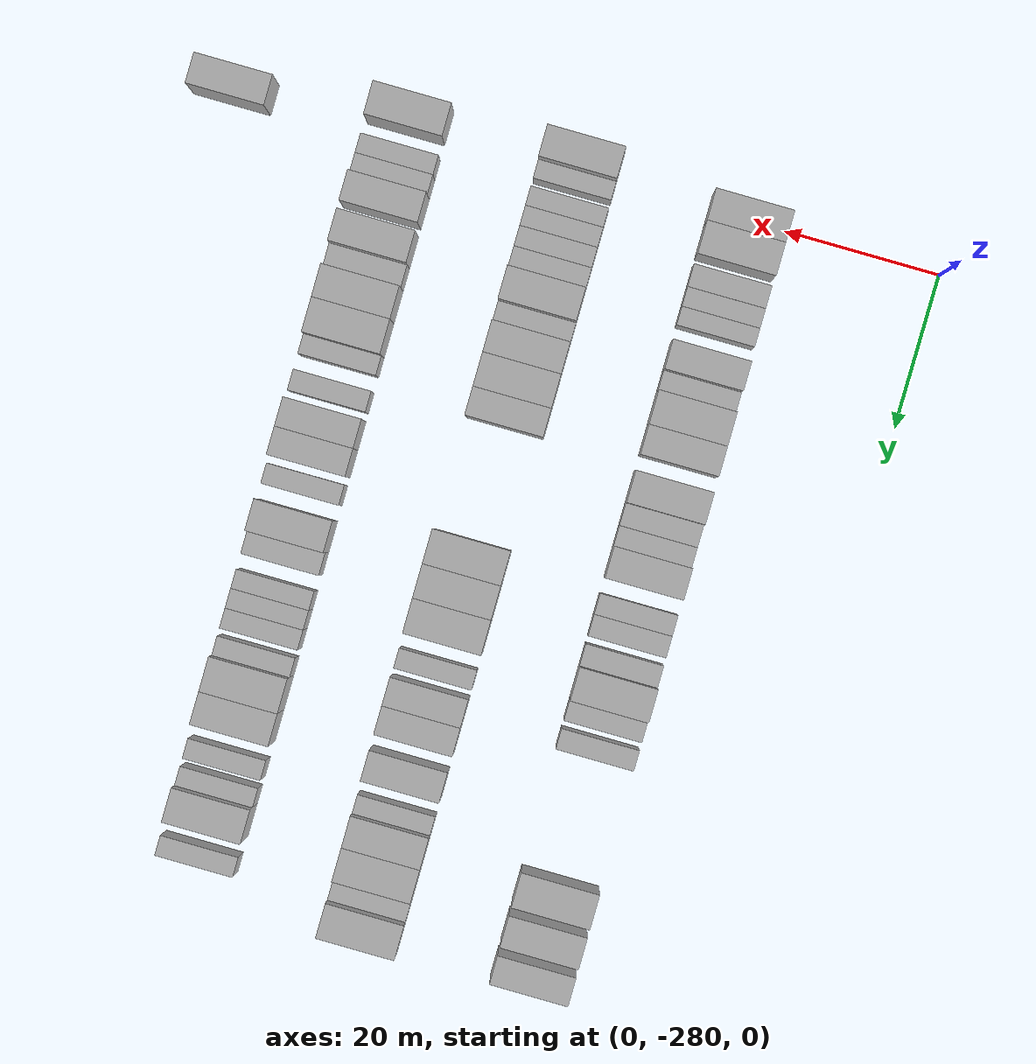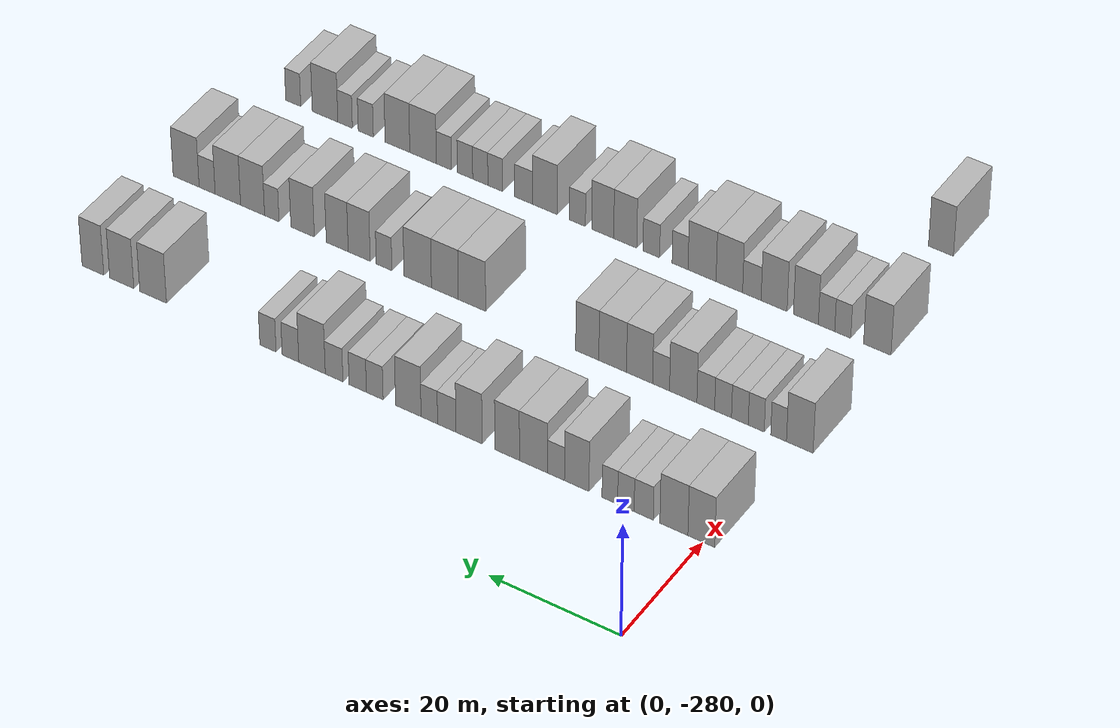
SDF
<sdf version="1.6">
 <world name="default">
  <model name="building_22">
   <static>1</static>
   <pose>25.0000 -279.7261 0 0.000000 0.000000 0.000000</pose>
   <link name="link">
    <pose>0 0 4.50 0 0 0</pose>
    <collision name="collision"><geometry><box><size>10.0000 4.0698 9.0000</size></box></geometry></collision>
    <visual name="visual">
     <cast_shadows>0</cast_shadows>
     <geometry><box><size>10.0000 4.0698 9.0000</size></box></geometry>
     <material>
      <script>
       <uri>model://HANNAS_wall/materials/scripts</uri>
       <uri>model://HANNAS_wall/materials/textures</uri>
       <name>vrc/HANNAS_wall</name>
      </script>
     </material>
    </visual>
   </link>
  </model>
  <model name="building_23">
   <static>1</static>
   <pose>25.0000 -275.5629 0 0.000000 0.000000 0.000000</pose>
   <link name="link">
    <pose>0 0 4.50 0 0 0</pose>
    <collision name="collision"><geometry><box><size>10.0000 4.2568 9.0000</size></box></geometry></collision>
    <visual name="visual">
     <cast_shadows>0</cast_shadows>
     <geometry><box><size>10.0000 4.2568 9.0000</size></box></geometry>
     <material>
      <script>
       <uri>model://HANNAS_wall/materials/scripts</uri>
       <uri>model://HANNAS_wall/materials/textures</uri>
       <name>vrc/HANNAS_wall</name>
      </script>
     </material>
    </visual>
   </link>
  </model>
  <model name="building_24">
   <static>1</static>
   <pose>25.0000 -270.9674 0 0.000000 0.000000 0.000000</pose>
   <link name="link">
    <pose>0 0 3.00 0 0 0</pose>
    <collision name="collision"><geometry><box><size>10.0000 2.9342 6.0000</size></box></geometry></collision>
    <visual name="visual">
     <cast_shadows>0</cast_shadows>
     <geometry><box><size>10.0000 2.9342 6.0000</size></box></geometry>
     <material>
      <script>
       <uri>model://HANNAS_wall/materials/scripts</uri>
       <uri>model://HANNAS_wall/materials/textures</uri>
       <name>vrc/HANNAS_wall</name>
      </script>
     </material>
    </visual>
   </link>
  </model>
  <model name="building_25">
   <static>1</static>
   <pose>25.0000 -268.2369 0 0.000000 0.000000 0.000000</pose>
   <link name="link">
    <pose>0 0 3.00 0 0 0</pose>
    <collision name="collision"><geometry><box><size>10.0000 2.5267 6.0000</size></box></geometry></collision>
    <visual name="visual">
     <cast_shadows>0</cast_shadows>
     <geometry><box><size>10.0000 2.5267 6.0000</size></box></geometry>
     <material>
      <script>
       <uri>model://HANNAS_wall/materials/scripts</uri>
       <uri>model://HANNAS_wall/materials/textures</uri>
       <name>vrc/HANNAS_wall</name>
      </script>
     </material>
    </visual>
   </link>
  </model>
  <model name="building_26">
   <static>1</static>
   <pose>25.0000 -265.7701 0 0.000000 0.000000 0.000000</pose>
   <link name="link">
    <pose>0 0 3.00 0 0 0</pose>
    <collision name="collision"><geometry><box><size>10.0000 2.4069 6.0000</size></box></geometry></collision>
    <visual name="visual">
     <cast_shadows>0</cast_shadows>
     <geometry><box><size>10.0000 2.4069 6.0000</size></box></geometry>
     <material>
      <script>
       <uri>model://HANNAS_wall/materials/scripts</uri>
       <uri>model://HANNAS_wall/materials/textures</uri>
       <name>vrc/HANNAS_wall</name>
      </script>
     </material>
    </visual>
   </link>
  </model>
  <model name="building_27">
   <static>1</static>
   <pose>25.0000 -260.6648 0 0.000000 0.000000 0.000000</pose>
   <link name="link">
    <pose>0 0 4.50 0 0 0</pose>
    <collision name="collision"><geometry><box><size>10.0000 3.8037 9.0000</size></box></geometry></collision>
    <visual name="visual">
     <cast_shadows>0</cast_shadows>
     <geometry><box><size>10.0000 3.8037 9.0000</size></box></geometry>
     <material>
      <script>
       <uri>model://HANNAS_wall/materials/scripts</uri>
       <uri>model://HANNAS_wall/materials/textures</uri>
       <name>vrc/HANNAS_wall</name>
      </script>
     </material>
    </visual>
   </link>
  </model>
  <model name="building_28">
   <static>1</static>
   <pose>25.0000 -257.4445 0 0.000000 0.000000 0.000000</pose>
   <link name="link">
    <pose>0 0 3.00 0 0 0</pose>
    <collision name="collision"><geometry><box><size>10.0000 2.6370 6.0000</size></box></geometry></collision>
    <visual name="visual">
     <cast_shadows>0</cast_shadows>
     <geometry><box><size>10.0000 2.6370 6.0000</size></box></geometry>
     <material>
      <script>
       <uri>model://HANNAS_wall/materials/scripts</uri>
       <uri>model://HANNAS_wall/materials/textures</uri>
       <name>vrc/HANNAS_wall</name>
      </script>
     </material>
    </visual>
   </link>
  </model>
  <model name="building_29">
   <static>1</static>
   <pose>25.0000 -253.9353 0 0.000000 0.000000 0.000000</pose>
   <link name="link">
    <pose>0 0 4.50 0 0 0</pose>
    <collision name="collision"><geometry><box><size>10.0000 4.3814 9.0000</size></box></geometry></collision>
    <visual name="visual">
     <cast_shadows>0</cast_shadows>
     <geometry><box><size>10.0000 4.3814 9.0000</size></box></geometry>
     <material>
      <script>
       <uri>model://HANNAS_wall/materials/scripts</uri>
       <uri>model://HANNAS_wall/materials/textures</uri>
       <name>vrc/HANNAS_wall</name>
      </script>
     </material>
    </visual>
   </link>
  </model>
  <model name="building_30">
   <static>1</static>
   <pose>25.0000 -249.8173 0 0.000000 0.000000 0.000000</pose>
   <link name="link">
    <pose>0 0 4.50 0 0 0</pose>
    <collision name="collision"><geometry><box><size>10.0000 3.8545 9.0000</size></box></geometry></collision>
    <visual name="visual">
     <cast_shadows>0</cast_shadows>
     <geometry><box><size>10.0000 3.8545 9.0000</size></box></geometry>
     <material>
      <script>
       <uri>model://HANNAS_wall/materials/scripts</uri>
       <uri>model://HANNAS_wall/materials/textures</uri>
       <name>vrc/HANNAS_wall</name>
      </script>
     </material>
    </visual>
   </link>
  </model>
  <model name="building_31">
   <static>1</static>
   <pose>25.0000 -243.8248 0 0.000000 0.000000 0.000000</pose>
   <link name="link">
    <pose>0 0 4.50 0 0 0</pose>
    <collision name="collision"><geometry><box><size>10.0000 4.1305 9.0000</size></box></geometry></collision>
    <visual name="visual">
     <cast_shadows>0</cast_shadows>
     <geometry><box><size>10.0000 4.1305 9.0000</size></box></geometry>
     <material>
      <script>
       <uri>model://HANNAS_wall/materials/scripts</uri>
       <uri>model://HANNAS_wall/materials/textures</uri>
       <name>vrc/HANNAS_wall</name>
      </script>
     </material>
    </visual>
   </link>
  </model>
  <model name="building_32">
   <static>1</static>
   <pose>25.0000 -240.3034 0 0.000000 0.000000 0.000000</pose>
   <link name="link">
    <pose>0 0 3.00 0 0 0</pose>
    <collision name="collision"><geometry><box><size>10.0000 2.9122 6.0000</size></box></geometry></collision>
    <visual name="visual">
     <cast_shadows>0</cast_shadows>
     <geometry><box><size>10.0000 2.9122 6.0000</size></box></geometry>
     <material>
      <script>
       <uri>model://HANNAS_wall/materials/scripts</uri>
       <uri>model://HANNAS_wall/materials/textures</uri>
       <name>vrc/HANNAS_wall</name>
      </script>
     </material>
    </visual>
   </link>
  </model>
  <model name="building_33">
   <static>1</static>
   <pose>25.0000 -237.5339 0 0.000000 0.000000 0.000000</pose>
   <link name="link">
    <pose>0 0 3.00 0 0 0</pose>
    <collision name="collision"><geometry><box><size>10.0000 2.6268 6.0000</size></box></geometry></collision>
    <visual name="visual">
     <cast_shadows>0</cast_shadows>
     <geometry><box><size>10.0000 2.6268 6.0000</size></box></geometry>
     <material>
      <script>
       <uri>model://HANNAS_wall/materials/scripts</uri>
       <uri>model://HANNAS_wall/materials/textures</uri>
       <name>vrc/HANNAS_wall</name>
      </script>
     </material>
    </visual>
   </link>
  </model>
  <model name="building_34">
   <static>1</static>
   <pose>25.0000 -234.1885 0 0.000000 0.000000 0.000000</pose>
   <link name="link">
    <pose>0 0 4.50 0 0 0</pose>
    <collision name="collision"><geometry><box><size>10.0000 4.0640 9.0000</size></box></geometry></collision>
    <visual name="visual">
     <cast_shadows>0</cast_shadows>
     <geometry><box><size>10.0000 4.0640 9.0000</size></box></geometry>
     <material>
      <script>
       <uri>model://HANNAS_wall/materials/scripts</uri>
       <uri>model://HANNAS_wall/materials/textures</uri>
       <name>vrc/HANNAS_wall</name>
      </script>
     </material>
    </visual>
   </link>
  </model>
  <model name="building_35">
   <static>1</static>
   <pose>25.0000 -228.8128 0 0.000000 0.000000 0.000000</pose>
   <link name="link">
    <pose>0 0 3.00 0 0 0</pose>
    <collision name="collision"><geometry><box><size>10.0000 2.6874 6.0000</size></box></geometry></collision>
    <visual name="visual">
     <cast_shadows>0</cast_shadows>
     <geometry><box><size>10.0000 2.6874 6.0000</size></box></geometry>
     <material>
      <script>
       <uri>model://HANNAS_wall/materials/scripts</uri>
       <uri>model://HANNAS_wall/materials/textures</uri>
       <name>vrc/HANNAS_wall</name>
      </script>
     </material>
    </visual>
   </link>
  </model>
  <model name="building_36">
   <static>1</static>
   <pose>25.0000 -226.0762 0 0.000000 0.000000 0.000000</pose>
   <link name="link">
    <pose>0 0 3.00 0 0 0</pose>
    <collision name="collision"><geometry><box><size>10.0000 2.7858 6.0000</size></box></geometry></collision>
    <visual name="visual">
     <cast_shadows>0</cast_shadows>
     <geometry><box><size>10.0000 2.7858 6.0000</size></box></geometry>
     <material>
      <script>
       <uri>model://HANNAS_wall/materials/scripts</uri>
       <uri>model://HANNAS_wall/materials/textures</uri>
       <name>vrc/HANNAS_wall</name>
      </script>
     </material>
    </visual>
   </link>
  </model>
  <model name="building_37">
   <static>1</static>
   <pose>25.0000 -222.2542 0 0.000000 0.000000 0.000000</pose>
   <link name="link">
    <pose>0 0 3.00 0 0 0</pose>
    <collision name="collision"><geometry><box><size>10.0000 2.8583 6.0000</size></box></geometry></collision>
    <visual name="visual">
     <cast_shadows>0</cast_shadows>
     <geometry><box><size>10.0000 2.8583 6.0000</size></box></geometry>
     <material>
      <script>
       <uri>model://HANNAS_wall/materials/scripts</uri>
       <uri>model://HANNAS_wall/materials/textures</uri>
       <name>vrc/HANNAS_wall</name>
      </script>
     </material>
    </visual>
   </link>
  </model>
  <model name="building_38">
   <static>1</static>
   <pose>25.0000 -218.6741 0 0.000000 0.000000 0.000000</pose>
   <link name="link">
    <pose>0 0 4.50 0 0 0</pose>
    <collision name="collision"><geometry><box><size>10.0000 4.3018 9.0000</size></box></geometry></collision>
    <visual name="visual">
     <cast_shadows>0</cast_shadows>
     <geometry><box><size>10.0000 4.3018 9.0000</size></box></geometry>
     <material>
      <script>
       <uri>model://HANNAS_wall/materials/scripts</uri>
       <uri>model://HANNAS_wall/materials/textures</uri>
       <name>vrc/HANNAS_wall</name>
      </script>
     </material>
    </visual>
   </link>
  </model>
  <model name="building_39">
   <static>1</static>
   <pose>25.0000 -215.1681 0 0.000000 0.000000 0.000000</pose>
   <link name="link">
    <pose>0 0 3.00 0 0 0</pose>
    <collision name="collision"><geometry><box><size>10.0000 2.7103 6.0000</size></box></geometry></collision>
    <visual name="visual">
     <cast_shadows>0</cast_shadows>
     <geometry><box><size>10.0000 2.7103 6.0000</size></box></geometry>
     <material>
      <script>
       <uri>model://HANNAS_wall/materials/scripts</uri>
       <uri>model://HANNAS_wall/materials/textures</uri>
       <name>vrc/HANNAS_wall</name>
      </script>
     </material>
    </visual>
   </link>
  </model>
  <model name="building_40">
   <static>1</static>
   <pose>25.0000 -211.4827 0 0.000000 0.000000 0.000000</pose>
   <link name="link">
    <pose>0 0 3.00 0 0 0</pose>
    <collision name="collision"><geometry><box><size>10.0000 2.6604 6.0000</size></box></geometry></collision>
    <visual name="visual">
     <cast_shadows>0</cast_shadows>
     <geometry><box><size>10.0000 2.6604 6.0000</size></box></geometry>
     <material>
      <script>
       <uri>model://HANNAS_wall/materials/scripts</uri>
       <uri>model://HANNAS_wall/materials/textures</uri>
       <name>vrc/HANNAS_wall</name>
      </script>
     </material>
    </visual>
   </link>
  </model>
  <model name="building_41">
   <static>1</static>
   <pose>25.0000 -192.4512 0 0.000000 0.000000 0.000000</pose>
   <link name="link">
    <pose>0 0 4.50 0 0 0</pose>
    <collision name="collision"><geometry><box><size>10.0000 4.4676 9.0000</size></box></geometry></collision>
    <visual name="visual">
     <cast_shadows>0</cast_shadows>
     <geometry><box><size>10.0000 4.4676 9.0000</size></box></geometry>
     <material>
      <script>
       <uri>model://HANNAS_wall/materials/scripts</uri>
       <uri>model://HANNAS_wall/materials/textures</uri>
       <name>vrc/HANNAS_wall</name>
      </script>
     </material>
    </visual>
   </link>
  </model>
  <model name="building_42">
   <static>1</static>
   <pose>25.0000 -187.1826 0 0.000000 0.000000 0.000000</pose>
   <link name="link">
    <pose>0 0 4.50 0 0 0</pose>
    <collision name="collision"><geometry><box><size>10.0000 4.0695 9.0000</size></box></geometry></collision>
    <visual name="visual">
     <cast_shadows>0</cast_shadows>
     <geometry><box><size>10.0000 4.0695 9.0000</size></box></geometry>
     <material>
      <script>
       <uri>model://HANNAS_wall/materials/scripts</uri>
       <uri>model://HANNAS_wall/materials/textures</uri>
       <name>vrc/HANNAS_wall</name>
      </script>
     </material>
    </visual>
   </link>
  </model>
  <model name="building_43">
   <static>1</static>
   <pose>25.0000 -182.3148 0 0.000000 0.000000 0.000000</pose>
   <link name="link">
    <pose>0 0 4.50 0 0 0</pose>
    <collision name="collision"><geometry><box><size>10.0000 3.6661 9.0000</size></box></geometry></collision>
    <visual name="visual">
     <cast_shadows>0</cast_shadows>
     <geometry><box><size>10.0000 3.6661 9.0000</size></box></geometry>
     <material>
      <script>
       <uri>model://HANNAS_wall/materials/scripts</uri>
       <uri>model://HANNAS_wall/materials/textures</uri>
       <name>vrc/HANNAS_wall</name>
      </script>
     </material>
    </visual>
   </link>
  </model>
  <model name="building_209">
   <static>1</static>
   <pose>47.0000 -281.5762 0 0.000000 0.000000 0.000000</pose>
   <link name="link">
    <pose>0 0 4.50 0 0 0</pose>
    <collision name="collision"><geometry><box><size>10.0000 4.0682 9.0000</size></box></geometry></collision>
    <visual name="visual">
     <cast_shadows>0</cast_shadows>
     <geometry><box><size>10.0000 4.0682 9.0000</size></box></geometry>
     <material>
      <script>
       <uri>model://HANNAS_wall/materials/scripts</uri>
       <uri>model://HANNAS_wall/materials/textures</uri>
       <name>vrc/HANNAS_wall</name>
      </script>
     </material>
    </visual>
   </link>
  </model>
  <model name="building_210">
   <static>1</static>
   <pose>47.0000 -278.3359 0 0.000000 0.000000 0.000000</pose>
   <link name="link">
    <pose>0 0 3.00 0 0 0</pose>
    <collision name="collision"><geometry><box><size>10.0000 2.4123 6.0000</size></box></geometry></collision>
    <visual name="visual">
     <cast_shadows>0</cast_shadows>
     <geometry><box><size>10.0000 2.4123 6.0000</size></box></geometry>
     <material>
      <script>
       <uri>model://HANNAS_wall/materials/scripts</uri>
       <uri>model://HANNAS_wall/materials/textures</uri>
       <name>vrc/HANNAS_wall</name>
      </script>
     </material>
    </visual>
   </link>
  </model>
  <model name="building_211">
   <static>1</static>
   <pose>47.0000 -274.8949 0 0.000000 0.000000 0.000000</pose>
   <link name="link">
    <pose>0 0 3.00 0 0 0</pose>
    <collision name="collision"><geometry><box><size>10.0000 2.4696 6.0000</size></box></geometry></collision>
    <visual name="visual">
     <cast_shadows>0</cast_shadows>
     <geometry><box><size>10.0000 2.4696 6.0000</size></box></geometry>
     <material>
      <script>
       <uri>model://HANNAS_wall/materials/scripts</uri>
       <uri>model://HANNAS_wall/materials/textures</uri>
       <name>vrc/HANNAS_wall</name>
      </script>
     </material>
    </visual>
   </link>
  </model>
  <model name="building_212">
   <static>1</static>
   <pose>47.0000 -272.3664 0 0.000000 0.000000 0.000000</pose>
   <link name="link">
    <pose>0 0 3.00 0 0 0</pose>
    <collision name="collision"><geometry><box><size>10.0000 2.5875 6.0000</size></box></geometry></collision>
    <visual name="visual">
     <cast_shadows>0</cast_shadows>
     <geometry><box><size>10.0000 2.5875 6.0000</size></box></geometry>
     <material>
      <script>
       <uri>model://HANNAS_wall/materials/scripts</uri>
       <uri>model://HANNAS_wall/materials/textures</uri>
       <name>vrc/HANNAS_wall</name>
      </script>
     </material>
    </visual>
   </link>
  </model>
  <model name="building_213">
   <static>1</static>
   <pose>47.0000 -269.7674 0 0.000000 0.000000 0.000000</pose>
   <link name="link">
    <pose>0 0 3.00 0 0 0</pose>
    <collision name="collision"><geometry><box><size>10.0000 2.6105 6.0000</size></box></geometry></collision>
    <visual name="visual">
     <cast_shadows>0</cast_shadows>
     <geometry><box><size>10.0000 2.6105 6.0000</size></box></geometry>
     <material>
      <script>
       <uri>model://HANNAS_wall/materials/scripts</uri>
       <uri>model://HANNAS_wall/materials/textures</uri>
       <name>vrc/HANNAS_wall</name>
      </script>
     </material>
    </visual>
   </link>
  </model>
  <model name="building_214">
   <static>1</static>
   <pose>47.0000 -267.0813 0 0.000000 0.000000 0.000000</pose>
   <link name="link">
    <pose>0 0 3.00 0 0 0</pose>
    <collision name="collision"><geometry><box><size>10.0000 2.7617 6.0000</size></box></geometry></collision>
    <visual name="visual">
     <cast_shadows>0</cast_shadows>
     <geometry><box><size>10.0000 2.7617 6.0000</size></box></geometry>
     <material>
      <script>
       <uri>model://HANNAS_wall/materials/scripts</uri>
       <uri>model://HANNAS_wall/materials/textures</uri>
       <name>vrc/HANNAS_wall</name>
      </script>
     </material>
    </visual>
   </link>
  </model>
  <model name="building_215">
   <static>1</static>
   <pose>47.0000 -263.5658 0 0.000000 0.000000 0.000000</pose>
   <link name="link">
    <pose>0 0 4.50 0 0 0</pose>
    <collision name="collision"><geometry><box><size>10.0000 4.2694 9.0000</size></box></geometry></collision>
    <visual name="visual">
     <cast_shadows>0</cast_shadows>
     <geometry><box><size>10.0000 4.2694 9.0000</size></box></geometry>
     <material>
      <script>
       <uri>model://HANNAS_wall/materials/scripts</uri>
       <uri>model://HANNAS_wall/materials/textures</uri>
       <name>vrc/HANNAS_wall</name>
      </script>
     </material>
    </visual>
   </link>
  </model>
  <model name="building_216">
   <static>1</static>
   <pose>47.0000 -260.1019 0 0.000000 0.000000 0.000000</pose>
   <link name="link">
    <pose>0 0 3.00 0 0 0</pose>
    <collision name="collision"><geometry><box><size>10.0000 2.6583 6.0000</size></box></geometry></collision>
    <visual name="visual">
     <cast_shadows>0</cast_shadows>
     <geometry><box><size>10.0000 2.6583 6.0000</size></box></geometry>
     <material>
      <script>
       <uri>model://HANNAS_wall/materials/scripts</uri>
       <uri>model://HANNAS_wall/materials/textures</uri>
       <name>vrc/HANNAS_wall</name>
      </script>
     </material>
    </visual>
   </link>
  </model>
  <model name="building_217">
   <static>1</static>
   <pose>47.0000 -256.7211 0 0.000000 0.000000 0.000000</pose>
   <link name="link">
    <pose>0 0 4.50 0 0 0</pose>
    <collision name="collision"><geometry><box><size>10.0000 4.1033 9.0000</size></box></geometry></collision>
    <visual name="visual">
     <cast_shadows>0</cast_shadows>
     <geometry><box><size>10.0000 4.1033 9.0000</size></box></geometry>
     <material>
      <script>
       <uri>model://HANNAS_wall/materials/scripts</uri>
       <uri>model://HANNAS_wall/materials/textures</uri>
       <name>vrc/HANNAS_wall</name>
      </script>
     </material>
    </visual>
   </link>
  </model>
  <model name="building_218">
   <static>1</static>
   <pose>47.0000 -252.4848 0 0.000000 0.000000 0.000000</pose>
   <link name="link">
    <pose>0 0 4.50 0 0 0</pose>
    <collision name="collision"><geometry><box><size>10.0000 4.3694 9.0000</size></box></geometry></collision>
    <visual name="visual">
     <cast_shadows>0</cast_shadows>
     <geometry><box><size>10.0000 4.3694 9.0000</size></box></geometry>
     <material>
      <script>
       <uri>model://HANNAS_wall/materials/scripts</uri>
       <uri>model://HANNAS_wall/materials/textures</uri>
       <name>vrc/HANNAS_wall</name>
      </script>
     </material>
    </visual>
   </link>
  </model>
  <model name="building_219">
   <static>1</static>
   <pose>47.0000 -248.4562 0 0.000000 0.000000 0.000000</pose>
   <link name="link">
    <pose>0 0 4.50 0 0 0</pose>
    <collision name="collision"><geometry><box><size>10.0000 3.6877 9.0000</size></box></geometry></collision>
    <visual name="visual">
     <cast_shadows>0</cast_shadows>
     <geometry><box><size>10.0000 3.6877 9.0000</size></box></geometry>
     <material>
      <script>
       <uri>model://HANNAS_wall/materials/scripts</uri>
       <uri>model://HANNAS_wall/materials/textures</uri>
       <name>vrc/HANNAS_wall</name>
      </script>
     </material>
    </visual>
   </link>
  </model>
  <model name="building_220">
   <static>1</static>
   <pose>47.0000 -229.9401 0 0.000000 0.000000 0.000000</pose>
   <link name="link">
    <pose>0 0 4.50 0 0 0</pose>
    <collision name="collision"><geometry><box><size>10.0000 4.4482 9.0000</size></box></geometry></collision>
    <visual name="visual">
     <cast_shadows>0</cast_shadows>
     <geometry><box><size>10.0000 4.4482 9.0000</size></box></geometry>
     <material>
      <script>
       <uri>model://HANNAS_wall/materials/scripts</uri>
       <uri>model://HANNAS_wall/materials/textures</uri>
       <name>vrc/HANNAS_wall</name>
      </script>
     </material>
    </visual>
   </link>
  </model>
  <model name="building_221">
   <static>1</static>
   <pose>47.0000 -225.5283 0 0.000000 0.000000 0.000000</pose>
   <link name="link">
    <pose>0 0 4.50 0 0 0</pose>
    <collision name="collision"><geometry><box><size>10.0000 4.3754 9.0000</size></box></geometry></collision>
    <visual name="visual">
     <cast_shadows>0</cast_shadows>
     <geometry><box><size>10.0000 4.3754 9.0000</size></box></geometry>
     <material>
      <script>
       <uri>model://HANNAS_wall/materials/scripts</uri>
       <uri>model://HANNAS_wall/materials/textures</uri>
       <name>vrc/HANNAS_wall</name>
      </script>
     </material>
    </visual>
   </link>
  </model>
  <model name="building_222">
   <static>1</static>
   <pose>47.0000 -221.0968 0 0.000000 0.000000 0.000000</pose>
   <link name="link">
    <pose>0 0 4.50 0 0 0</pose>
    <collision name="collision"><geometry><box><size>10.0000 4.4876 9.0000</size></box></geometry></collision>
    <visual name="visual">
     <cast_shadows>0</cast_shadows>
     <geometry><box><size>10.0000 4.4876 9.0000</size></box></geometry>
     <material>
      <script>
       <uri>model://HANNAS_wall/materials/scripts</uri>
       <uri>model://HANNAS_wall/materials/textures</uri>
       <name>vrc/HANNAS_wall</name>
      </script>
     </material>
    </visual>
   </link>
  </model>
  <model name="building_223">
   <static>1</static>
   <pose>47.0000 -215.5608 0 0.000000 0.000000 0.000000</pose>
   <link name="link">
    <pose>0 0 3.00 0 0 0</pose>
    <collision name="collision"><geometry><box><size>10.0000 2.5843 6.0000</size></box></geometry></collision>
    <visual name="visual">
     <cast_shadows>0</cast_shadows>
     <geometry><box><size>10.0000 2.5843 6.0000</size></box></geometry>
     <material>
      <script>
       <uri>model://HANNAS_wall/materials/scripts</uri>
       <uri>model://HANNAS_wall/materials/textures</uri>
       <name>vrc/HANNAS_wall</name>
      </script>
     </material>
    </visual>
   </link>
  </model>
  <model name="building_224">
   <static>1</static>
   <pose>47.0000 -211.4466 0 0.000000 0.000000 0.000000</pose>
   <link name="link">
    <pose>0 0 4.50 0 0 0</pose>
    <collision name="collision"><geometry><box><size>10.0000 3.6441 9.0000</size></box></geometry></collision>
    <visual name="visual">
     <cast_shadows>0</cast_shadows>
     <geometry><box><size>10.0000 3.6441 9.0000</size></box></geometry>
     <material>
      <script>
       <uri>model://HANNAS_wall/materials/scripts</uri>
       <uri>model://HANNAS_wall/materials/textures</uri>
       <name>vrc/HANNAS_wall</name>
      </script>
     </material>
    </visual>
   </link>
  </model>
  <model name="building_225">
   <static>1</static>
   <pose>47.0000 -207.7997 0 0.000000 0.000000 0.000000</pose>
   <link name="link">
    <pose>0 0 4.50 0 0 0</pose>
    <collision name="collision"><geometry><box><size>10.0000 3.6498 9.0000</size></box></geometry></collision>
    <visual name="visual">
     <cast_shadows>0</cast_shadows>
     <geometry><box><size>10.0000 3.6498 9.0000</size></box></geometry>
     <material>
      <script>
       <uri>model://HANNAS_wall/materials/scripts</uri>
       <uri>model://HANNAS_wall/materials/textures</uri>
       <name>vrc/HANNAS_wall</name>
      </script>
     </material>
    </visual>
   </link>
  </model>
  <model name="building_226">
   <static>1</static>
   <pose>47.0000 -202.0163 0 0.000000 0.000000 0.000000</pose>
   <link name="link">
    <pose>0 0 4.50 0 0 0</pose>
    <collision name="collision"><geometry><box><size>10.0000 3.9171 9.0000</size></box></geometry></collision>
    <visual name="visual">
     <cast_shadows>0</cast_shadows>
     <geometry><box><size>10.0000 3.9171 9.0000</size></box></geometry>
     <material>
      <script>
       <uri>model://HANNAS_wall/materials/scripts</uri>
       <uri>model://HANNAS_wall/materials/textures</uri>
       <name>vrc/HANNAS_wall</name>
      </script>
     </material>
    </visual>
   </link>
  </model>
  <model name="building_227">
   <static>1</static>
   <pose>47.0000 -196.8398 0 0.000000 0.000000 0.000000</pose>
   <link name="link">
    <pose>0 0 3.00 0 0 0</pose>
    <collision name="collision"><geometry><box><size>10.0000 2.4359 6.0000</size></box></geometry></collision>
    <visual name="visual">
     <cast_shadows>0</cast_shadows>
     <geometry><box><size>10.0000 2.4359 6.0000</size></box></geometry>
     <material>
      <script>
       <uri>model://HANNAS_wall/materials/scripts</uri>
       <uri>model://HANNAS_wall/materials/textures</uri>
       <name>vrc/HANNAS_wall</name>
      </script>
     </material>
    </visual>
   </link>
  </model>
  <model name="building_228">
   <static>1</static>
   <pose>47.0000 -193.5932 0 0.000000 0.000000 0.000000</pose>
   <link name="link">
    <pose>0 0 4.50 0 0 0</pose>
    <collision name="collision"><geometry><box><size>10.0000 4.0572 9.0000</size></box></geometry></collision>
    <visual name="visual">
     <cast_shadows>0</cast_shadows>
     <geometry><box><size>10.0000 4.0572 9.0000</size></box></geometry>
     <material>
      <script>
       <uri>model://HANNAS_wall/materials/scripts</uri>
       <uri>model://HANNAS_wall/materials/textures</uri>
       <name>vrc/HANNAS_wall</name>
      </script>
     </material>
    </visual>
   </link>
  </model>
  <model name="building_229">
   <static>1</static>
   <pose>47.0000 -189.4056 0 0.000000 0.000000 0.000000</pose>
   <link name="link">
    <pose>0 0 4.50 0 0 0</pose>
    <collision name="collision"><geometry><box><size>10.0000 4.3180 9.0000</size></box></geometry></collision>
    <visual name="visual">
     <cast_shadows>0</cast_shadows>
     <geometry><box><size>10.0000 4.3180 9.0000</size></box></geometry>
     <material>
      <script>
       <uri>model://HANNAS_wall/materials/scripts</uri>
       <uri>model://HANNAS_wall/materials/textures</uri>
       <name>vrc/HANNAS_wall</name>
      </script>
     </material>
    </visual>
   </link>
  </model>
  <model name="building_230">
   <static>1</static>
   <pose>47.0000 -185.8784 0 0.000000 0.000000 0.000000</pose>
   <link name="link">
    <pose>0 0 3.00 0 0 0</pose>
    <collision name="collision"><geometry><box><size>10.0000 2.7364 6.0000</size></box></geometry></collision>
    <visual name="visual">
     <cast_shadows>0</cast_shadows>
     <geometry><box><size>10.0000 2.7364 6.0000</size></box></geometry>
     <material>
      <script>
       <uri>model://HANNAS_wall/materials/scripts</uri>
       <uri>model://HANNAS_wall/materials/textures</uri>
       <name>vrc/HANNAS_wall</name>
      </script>
     </material>
    </visual>
   </link>
  </model>
  <model name="building_231">
   <static>1</static>
   <pose>47.0000 -182.2921 0 0.000000 0.000000 0.000000</pose>
   <link name="link">
    <pose>0 0 4.50 0 0 0</pose>
    <collision name="collision"><geometry><box><size>10.0000 4.4363 9.0000</size></box></geometry></collision>
    <visual name="visual">
     <cast_shadows>0</cast_shadows>
     <geometry><box><size>10.0000 4.4363 9.0000</size></box></geometry>
     <material>
      <script>
       <uri>model://HANNAS_wall/materials/scripts</uri>
       <uri>model://HANNAS_wall/materials/textures</uri>
       <name>vrc/HANNAS_wall</name>
      </script>
     </material>
    </visual>
   </link>
  </model>
  <model name="building_398">
   <static>1</static>
   <pose>69.0000 -280.7662 0 0.000000 0.000000 0.000000</pose>
   <link name="link">
    <pose>0 0 4.50 0 0 0</pose>
    <collision name="collision"><geometry><box><size>10.0000 4.2450 9.0000</size></box></geometry></collision>
    <visual name="visual">
     <cast_shadows>0</cast_shadows>
     <geometry><box><size>10.0000 4.2450 9.0000</size></box></geometry>
     <material>
      <script>
       <uri>model://HANNAS_wall/materials/scripts</uri>
       <uri>model://HANNAS_wall/materials/textures</uri>
       <name>vrc/HANNAS_wall</name>
      </script>
     </material>
    </visual>
   </link>
  </model>
  <model name="building_399">
   <static>1</static>
   <pose>69.0000 -275.3933 0 0.000000 0.000000 0.000000</pose>
   <link name="link">
    <pose>0 0 3.00 0 0 0</pose>
    <collision name="collision"><geometry><box><size>10.0000 2.5007 6.0000</size></box></geometry></collision>
    <visual name="visual">
     <cast_shadows>0</cast_shadows>
     <geometry><box><size>10.0000 2.5007 6.0000</size></box></geometry>
     <material>
      <script>
       <uri>model://HANNAS_wall/materials/scripts</uri>
       <uri>model://HANNAS_wall/materials/textures</uri>
       <name>vrc/HANNAS_wall</name>
      </script>
     </material>
    </visual>
   </link>
  </model>
  <model name="building_400">
   <static>1</static>
   <pose>69.0000 -272.8638 0 0.000000 0.000000 0.000000</pose>
   <link name="link">
    <pose>0 0 3.00 0 0 0</pose>
    <collision name="collision"><geometry><box><size>10.0000 2.5584 6.0000</size></box></geometry></collision>
    <visual name="visual">
     <cast_shadows>0</cast_shadows>
     <geometry><box><size>10.0000 2.5584 6.0000</size></box></geometry>
     <material>
      <script>
       <uri>model://HANNAS_wall/materials/scripts</uri>
       <uri>model://HANNAS_wall/materials/textures</uri>
       <name>vrc/HANNAS_wall</name>
      </script>
     </material>
    </visual>
   </link>
  </model>
  <model name="building_401">
   <static>1</static>
   <pose>69.0000 -269.6270 0 0.000000 0.000000 0.000000</pose>
   <link name="link">
    <pose>0 0 4.50 0 0 0</pose>
    <collision name="collision"><geometry><box><size>10.0000 3.9153 9.0000</size></box></geometry></collision>
    <visual name="visual">
     <cast_shadows>0</cast_shadows>
     <geometry><box><size>10.0000 3.9153 9.0000</size></box></geometry>
     <material>
      <script>
       <uri>model://HANNAS_wall/materials/scripts</uri>
       <uri>model://HANNAS_wall/materials/textures</uri>
       <name>vrc/HANNAS_wall</name>
      </script>
     </material>
    </visual>
   </link>
  </model>
  <model name="building_402">
   <static>1</static>
   <pose>69.0000 -264.6149 0 0.000000 0.000000 0.000000</pose>
   <link name="link">
    <pose>0 0 4.50 0 0 0</pose>
    <collision name="collision"><geometry><box><size>10.0000 4.1088 9.0000</size></box></geometry></collision>
    <visual name="visual">
     <cast_shadows>0</cast_shadows>
     <geometry><box><size>10.0000 4.1088 9.0000</size></box></geometry>
     <material>
      <script>
       <uri>model://HANNAS_wall/materials/scripts</uri>
       <uri>model://HANNAS_wall/materials/textures</uri>
       <name>vrc/HANNAS_wall</name>
      </script>
     </material>
    </visual>
   </link>
  </model>
  <model name="building_403">
   <static>1</static>
   <pose>69.0000 -261.0984 0 0.000000 0.000000 0.000000</pose>
   <link name="link">
    <pose>0 0 3.00 0 0 0</pose>
    <collision name="collision"><geometry><box><size>10.0000 2.9243 6.0000</size></box></geometry></collision>
    <visual name="visual">
     <cast_shadows>0</cast_shadows>
     <geometry><box><size>10.0000 2.9243 6.0000</size></box></geometry>
     <material>
      <script>
       <uri>model://HANNAS_wall/materials/scripts</uri>
       <uri>model://HANNAS_wall/materials/textures</uri>
       <name>vrc/HANNAS_wall</name>
      </script>
     </material>
    </visual>
   </link>
  </model>
  <model name="building_404">
   <static>1</static>
   <pose>69.0000 -257.5223 0 0.000000 0.000000 0.000000</pose>
   <link name="link">
    <pose>0 0 4.50 0 0 0</pose>
    <collision name="collision"><geometry><box><size>10.0000 4.2279 9.0000</size></box></geometry></collision>
    <visual name="visual">
     <cast_shadows>0</cast_shadows>
     <geometry><box><size>10.0000 4.2279 9.0000</size></box></geometry>
     <material>
      <script>
       <uri>model://HANNAS_wall/materials/scripts</uri>
       <uri>model://HANNAS_wall/materials/textures</uri>
       <name>vrc/HANNAS_wall</name>
      </script>
     </material>
    </visual>
   </link>
  </model>
  <model name="building_405">
   <static>1</static>
   <pose>69.0000 -253.1661 0 0.000000 0.000000 0.000000</pose>
   <link name="link">
    <pose>0 0 4.50 0 0 0</pose>
    <collision name="collision"><geometry><box><size>10.0000 4.4844 9.0000</size></box></geometry></collision>
    <visual name="visual">
     <cast_shadows>0</cast_shadows>
     <geometry><box><size>10.0000 4.4844 9.0000</size></box></geometry>
     <material>
      <script>
       <uri>model://HANNAS_wall/materials/scripts</uri>
       <uri>model://HANNAS_wall/materials/textures</uri>
       <name>vrc/HANNAS_wall</name>
      </script>
     </material>
    </visual>
   </link>
  </model>
  <model name="building_406">
   <static>1</static>
   <pose>69.0000 -249.6457 0 0.000000 0.000000 0.000000</pose>
   <link name="link">
    <pose>0 0 3.00 0 0 0</pose>
    <collision name="collision"><geometry><box><size>10.0000 2.5564 6.0000</size></box></geometry></collision>
    <visual name="visual">
     <cast_shadows>0</cast_shadows>
     <geometry><box><size>10.0000 2.5564 6.0000</size></box></geometry>
     <material>
      <script>
       <uri>model://HANNAS_wall/materials/scripts</uri>
       <uri>model://HANNAS_wall/materials/textures</uri>
       <name>vrc/HANNAS_wall</name>
      </script>
     </material>
    </visual>
   </link>
  </model>
  <model name="building_407">
   <static>1</static>
   <pose>69.0000 -245.0244 0 0.000000 0.000000 0.000000</pose>
   <link name="link">
    <pose>0 0 3.00 0 0 0</pose>
    <collision name="collision"><geometry><box><size>10.0000 2.6862 6.0000</size></box></geometry></collision>
    <visual name="visual">
     <cast_shadows>0</cast_shadows>
     <geometry><box><size>10.0000 2.6862 6.0000</size></box></geometry>
     <material>
      <script>
       <uri>model://HANNAS_wall/materials/scripts</uri>
       <uri>model://HANNAS_wall/materials/textures</uri>
       <name>vrc/HANNAS_wall</name>
      </script>
     </material>
    </visual>
   </link>
  </model>
  <model name="building_408">
   <static>1</static>
   <pose>69.0000 -240.8091 0 0.000000 0.000000 0.000000</pose>
   <link name="link">
    <pose>0 0 4.50 0 0 0</pose>
    <collision name="collision"><geometry><box><size>10.0000 3.7442 9.0000</size></box></geometry></collision>
    <visual name="visual">
     <cast_shadows>0</cast_shadows>
     <geometry><box><size>10.0000 3.7442 9.0000</size></box></geometry>
     <material>
      <script>
       <uri>model://HANNAS_wall/materials/scripts</uri>
       <uri>model://HANNAS_wall/materials/textures</uri>
       <name>vrc/HANNAS_wall</name>
      </script>
     </material>
    </visual>
   </link>
  </model>
  <model name="building_409">
   <static>1</static>
   <pose>69.0000 -237.1335 0 0.000000 0.000000 0.000000</pose>
   <link name="link">
    <pose>0 0 4.50 0 0 0</pose>
    <collision name="collision"><geometry><box><size>10.0000 3.6070 9.0000</size></box></geometry></collision>
    <visual name="visual">
     <cast_shadows>0</cast_shadows>
     <geometry><box><size>10.0000 3.6070 9.0000</size></box></geometry>
     <material>
      <script>
       <uri>model://HANNAS_wall/materials/scripts</uri>
       <uri>model://HANNAS_wall/materials/textures</uri>
       <name>vrc/HANNAS_wall</name>
      </script>
     </material>
    </visual>
   </link>
  </model>
  <model name="building_410">
   <static>1</static>
   <pose>69.0000 -233.0238 0 0.000000 0.000000 0.000000</pose>
   <link name="link">
    <pose>0 0 3.00 0 0 0</pose>
    <collision name="collision"><geometry><box><size>10.0000 2.6124 6.0000</size></box></geometry></collision>
    <visual name="visual">
     <cast_shadows>0</cast_shadows>
     <geometry><box><size>10.0000 2.6124 6.0000</size></box></geometry>
     <material>
      <script>
       <uri>model://HANNAS_wall/materials/scripts</uri>
       <uri>model://HANNAS_wall/materials/textures</uri>
       <name>vrc/HANNAS_wall</name>
      </script>
     </material>
    </visual>
   </link>
  </model>
  <model name="building_411">
   <static>1</static>
   <pose>69.0000 -227.6816 0 0.000000 0.000000 0.000000</pose>
   <link name="link">
    <pose>0 0 4.50 0 0 0</pose>
    <collision name="collision"><geometry><box><size>10.0000 4.0722 9.0000</size></box></geometry></collision>
    <visual name="visual">
     <cast_shadows>0</cast_shadows>
     <geometry><box><size>10.0000 4.0722 9.0000</size></box></geometry>
     <material>
      <script>
       <uri>model://HANNAS_wall/materials/scripts</uri>
       <uri>model://HANNAS_wall/materials/textures</uri>
       <name>vrc/HANNAS_wall</name>
      </script>
     </material>
    </visual>
   </link>
  </model>
  <model name="building_412">
   <static>1</static>
   <pose>69.0000 -224.1774 0 0.000000 0.000000 0.000000</pose>
   <link name="link">
    <pose>0 0 3.00 0 0 0</pose>
    <collision name="collision"><geometry><box><size>10.0000 2.9362 6.0000</size></box></geometry></collision>
    <visual name="visual">
     <cast_shadows>0</cast_shadows>
     <geometry><box><size>10.0000 2.9362 6.0000</size></box></geometry>
     <material>
      <script>
       <uri>model://HANNAS_wall/materials/scripts</uri>
       <uri>model://HANNAS_wall/materials/textures</uri>
       <name>vrc/HANNAS_wall</name>
      </script>
     </material>
    </visual>
   </link>
  </model>
  <model name="building_413">
   <static>1</static>
   <pose>69.0000 -219.4759 0 0.000000 0.000000 0.000000</pose>
   <link name="link">
    <pose>0 0 3.00 0 0 0</pose>
    <collision name="collision"><geometry><box><size>10.0000 2.4666 6.0000</size></box></geometry></collision>
    <visual name="visual">
     <cast_shadows>0</cast_shadows>
     <geometry><box><size>10.0000 2.4666 6.0000</size></box></geometry>
     <material>
      <script>
       <uri>model://HANNAS_wall/materials/scripts</uri>
       <uri>model://HANNAS_wall/materials/textures</uri>
       <name>vrc/HANNAS_wall</name>
      </script>
     </material>
    </visual>
   </link>
  </model>
  <model name="building_414">
   <static>1</static>
   <pose>69.0000 -216.9795 0 0.000000 0.000000 0.000000</pose>
   <link name="link">
    <pose>0 0 3.00 0 0 0</pose>
    <collision name="collision"><geometry><box><size>10.0000 2.5262 6.0000</size></box></geometry></collision>
    <visual name="visual">
     <cast_shadows>0</cast_shadows>
     <geometry><box><size>10.0000 2.5262 6.0000</size></box></geometry>
     <material>
      <script>
       <uri>model://HANNAS_wall/materials/scripts</uri>
       <uri>model://HANNAS_wall/materials/textures</uri>
       <name>vrc/HANNAS_wall</name>
      </script>
     </material>
    </visual>
   </link>
  </model>
  <model name="building_415">
   <static>1</static>
   <pose>69.0000 -214.4280 0 0.000000 0.000000 0.000000</pose>
   <link name="link">
    <pose>0 0 3.00 0 0 0</pose>
    <collision name="collision"><geometry><box><size>10.0000 2.5768 6.0000</size></box></geometry></collision>
    <visual name="visual">
     <cast_shadows>0</cast_shadows>
     <geometry><box><size>10.0000 2.5768 6.0000</size></box></geometry>
     <material>
      <script>
       <uri>model://HANNAS_wall/materials/scripts</uri>
       <uri>model://HANNAS_wall/materials/textures</uri>
       <name>vrc/HANNAS_wall</name>
      </script>
     </material>
    </visual>
   </link>
  </model>
  <model name="building_416">
   <static>1</static>
   <pose>69.0000 -210.8872 0 0.000000 0.000000 0.000000</pose>
   <link name="link">
    <pose>0 0 3.00 0 0 0</pose>
    <collision name="collision"><geometry><box><size>10.0000 2.5047 6.0000</size></box></geometry></collision>
    <visual name="visual">
     <cast_shadows>0</cast_shadows>
     <geometry><box><size>10.0000 2.5047 6.0000</size></box></geometry>
     <material>
      <script>
       <uri>model://HANNAS_wall/materials/scripts</uri>
       <uri>model://HANNAS_wall/materials/textures</uri>
       <name>vrc/HANNAS_wall</name>
      </script>
     </material>
    </visual>
   </link>
  </model>
  <model name="building_417">
   <static>1</static>
   <pose>69.0000 -207.4001 0 0.000000 0.000000 0.000000</pose>
   <link name="link">
    <pose>0 0 4.50 0 0 0</pose>
    <collision name="collision"><geometry><box><size>10.0000 4.4697 9.0000</size></box></geometry></collision>
    <visual name="visual">
     <cast_shadows>0</cast_shadows>
     <geometry><box><size>10.0000 4.4697 9.0000</size></box></geometry>
     <material>
      <script>
       <uri>model://HANNAS_wall/materials/scripts</uri>
       <uri>model://HANNAS_wall/materials/textures</uri>
       <name>vrc/HANNAS_wall</name>
      </script>
     </material>
    </visual>
   </link>
  </model>
  <model name="building_418">
   <static>1</static>
   <pose>69.0000 -203.0801 0 0.000000 0.000000 0.000000</pose>
   <link name="link">
    <pose>0 0 4.50 0 0 0</pose>
    <collision name="collision"><geometry><box><size>10.0000 4.1703 9.0000</size></box></geometry></collision>
    <visual name="visual">
     <cast_shadows>0</cast_shadows>
     <geometry><box><size>10.0000 4.1703 9.0000</size></box></geometry>
     <material>
      <script>
       <uri>model://HANNAS_wall/materials/scripts</uri>
       <uri>model://HANNAS_wall/materials/textures</uri>
       <name>vrc/HANNAS_wall</name>
      </script>
     </material>
    </visual>
   </link>
  </model>
  <model name="building_419">
   <static>1</static>
   <pose>69.0000 -197.7099 0 0.000000 0.000000 0.000000</pose>
   <link name="link">
    <pose>0 0 3.00 0 0 0</pose>
    <collision name="collision"><geometry><box><size>10.0000 2.5701 6.0000</size></box></geometry></collision>
    <visual name="visual">
     <cast_shadows>0</cast_shadows>
     <geometry><box><size>10.0000 2.5701 6.0000</size></box></geometry>
     <material>
      <script>
       <uri>model://HANNAS_wall/materials/scripts</uri>
       <uri>model://HANNAS_wall/materials/textures</uri>
       <name>vrc/HANNAS_wall</name>
      </script>
     </material>
    </visual>
   </link>
  </model>
  <model name="building_420">
   <static>1</static>
   <pose>69.0000 -194.1840 0 0.000000 0.000000 0.000000</pose>
   <link name="link">
    <pose>0 0 3.00 0 0 0</pose>
    <collision name="collision"><geometry><box><size>10.0000 2.4817 6.0000</size></box></geometry></collision>
    <visual name="visual">
     <cast_shadows>0</cast_shadows>
     <geometry><box><size>10.0000 2.4817 6.0000</size></box></geometry>
     <material>
      <script>
       <uri>model://HANNAS_wall/materials/scripts</uri>
       <uri>model://HANNAS_wall/materials/textures</uri>
       <name>vrc/HANNAS_wall</name>
      </script>
     </material>
    </visual>
   </link>
  </model>
  <model name="building_421">
   <static>1</static>
   <pose>69.0000 -190.7533 0 0.000000 0.000000 0.000000</pose>
   <link name="link">
    <pose>0 0 4.50 0 0 0</pose>
    <collision name="collision"><geometry><box><size>10.0000 4.3797 9.0000</size></box></geometry></collision>
    <visual name="visual">
     <cast_shadows>0</cast_shadows>
     <geometry><box><size>10.0000 4.3797 9.0000</size></box></geometry>
     <material>
      <script>
       <uri>model://HANNAS_wall/materials/scripts</uri>
       <uri>model://HANNAS_wall/materials/textures</uri>
       <name>vrc/HANNAS_wall</name>
      </script>
     </material>
    </visual>
   </link>
  </model>
  <model name="building_422">
   <static>1</static>
   <pose>69.0000 -185.2787 0 0.000000 0.000000 0.000000</pose>
   <link name="link">
    <pose>0 0 3.00 0 0 0</pose>
    <collision name="collision"><geometry><box><size>10.0000 2.5695 6.0000</size></box></geometry></collision>
    <visual name="visual">
     <cast_shadows>0</cast_shadows>
     <geometry><box><size>10.0000 2.5695 6.0000</size></box></geometry>
     <material>
      <script>
       <uri>model://HANNAS_wall/materials/scripts</uri>
       <uri>model://HANNAS_wall/materials/textures</uri>
       <name>vrc/HANNAS_wall</name>
      </script>
     </material>
    </visual>
   </link>
  </model>
  <model name="building_591">
   <static>1</static>
   <pose>91.0000 -278.2553 0 0.000000 0.000000 0.000000</pose>
   <link name="link">
    <pose>0 0 4.50 0 0 0</pose>
    <collision name="collision"><geometry><box><size>10.0000 3.9206 9.0000</size></box></geometry></collision>
    <visual name="visual">
     <cast_shadows>0</cast_shadows>
     <geometry><box><size>10.0000 3.9206 9.0000</size></box></geometry>
     <material>
      <script>
       <uri>model://HANNAS_wall/materials/scripts</uri>
       <uri>model://HANNAS_wall/materials/textures</uri>
       <name>vrc/HANNAS_wall</name>
      </script>
     </material>
    </visual>
   </link>
  </model>
 </world>
</sdf>
